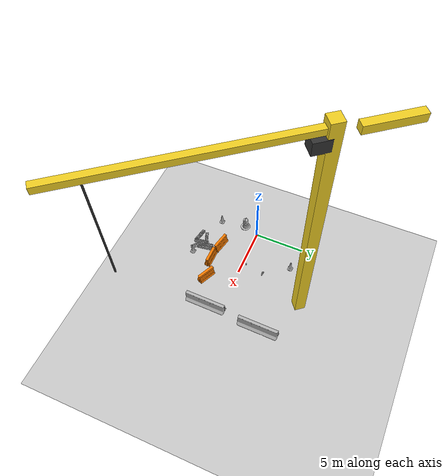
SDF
<sdf version="1.6">
 <world name="default">
  <model name="ground_plane">
   <static>1</static>
   <link name="link">
    <collision name="collision">
     <geometry><plane><normal>0 0 1</normal><size>100 100</size></plane></geometry>
     <surface><friction><ode><mu>100</mu><mu2>50</mu2></ode></friction></surface>
    </collision>
    <visual name="visual">
     <cast_shadows>0</cast_shadows>
     <geometry><plane><normal>0 0 1</normal><size>100 100</size></plane></geometry>
     <material>
      <script><uri>file://media/materials/scripts/gazebo.material</uri><name>Gazebo/Grey</name></script>
     </material>
    </visual>
   </link>
  </model>
  <model name="tower_crane">
   <static>1</static>
   <link name="link">
    <collision name="collision">
     <geometry><mesh><uri>model://tower_crane/meshes/tower_crane.dae</uri></mesh></geometry>
    </collision>
    <visual name="visual">
     <geometry><mesh><uri>model://tower_crane/meshes/tower_crane.dae</uri></mesh></geometry>
    </visual>
   </link>
   <pose>6.03726 6.79238 0 0 0 -0.898155</pose>
  </model>
  <model name="Construction Barrel_0">
   <link name="link">
    <inertial>
     <pose>0 0 0.4 0 -0 0</pose>
     <mass>500</mass>
     <inertia><ixx>51.2096</ixx><iyy>51.2096</iyy><izz>25</izz><ixy>0</ixy><ixz>0</ixz><iyz>0</iyz></inertia>
    </inertial>
    <collision name="collision">
     <geometry><mesh><uri>model://construction_barrel/meshes/construction_barrel.dae</uri></mesh></geometry>
    </collision>
    <visual name="visual">
     <geometry><mesh><uri>model://construction_barrel/meshes/construction_barrel.dae</uri></mesh></geometry>
    </visual>
   </link>
   <pose>-0.544997 -1.5664 -1e-06 3e-06 -2e-06 4.7e-05</pose>
  </model>
  <model name="drc_practice_organge_jersey_barrier_clone_clone_clone_clone">
   <static>1</static>
   <link name="link">
    <visual name="visual">
     <geometry>
      <mesh><uri>model://drc_practice_orange_jersey_barrier/meshes/jersey_barrier.dae</uri></mesh>
     </geometry>
    </visual>
    <collision name="collision">
     <geometry>
      <mesh><uri>model://drc_practice_orange_jersey_barrier/meshes/jersey_barrier.dae</uri></mesh>
     </geometry>
    </collision>
   </link>
   <pose>2.74419 -2.98704 0 0 -0 1.36537</pose>
  </model>
  <model name="drc_practice_organge_jersey_barrier_clone_clone_clone_clone_0">
   <static>1</static>
   <link name="link">
    <visual name="visual">
     <geometry>
      <mesh><uri>model://drc_practice_orange_jersey_barrier/meshes/jersey_barrier.dae</uri></mesh>
     </geometry>
    </visual>
    <collision name="collision">
     <geometry>
      <mesh><uri>model://drc_practice_orange_jersey_barrier/meshes/jersey_barrier.dae</uri></mesh>
     </geometry>
    </collision>
   </link>
   <pose>4.65125 -3.23691 0 0 -0 1.56758</pose>
  </model>
  <model name="drc_practice_organge_jersey_barrier_clone_clone_clone_clone_0_clone">
   <static>1</static>
   <link name="link">
    <visual name="visual">
     <geometry>
      <mesh><uri>model://drc_practice_orange_jersey_barrier/meshes/jersey_barrier.dae</uri></mesh>
     </geometry>
    </visual>
    <collision name="collision">
     <geometry>
      <mesh><uri>model://drc_practice_orange_jersey_barrier/meshes/jersey_barrier.dae</uri></mesh>
     </geometry>
    </collision>
   </link>
   <pose>6.76004 -2.75764 0 0 -0 1.13718</pose>
  </model>
  <model name="jersey_barrier">
   <static>1</static>
   <link name="link">
    <visual name="visual">
     <geometry><mesh><uri>model://jersey_barrier/meshes/jersey_barrier.dae</uri></mesh></geometry>
    </visual>
    <collision name="upright">
     <pose>0 0 0.5715 0 -0 0</pose>
     <geometry><box><size>4.06542 0.3063 1.143</size></box></geometry>
    </collision>
    <collision name="base">
     <pose>0 0 0.032258 0 -0 0</pose>
     <geometry><box><size>4.06542 0.8107 0.064516</size></box></geometry>
    </collision>
    <collision name="base2">
     <pose>0 0 0.1 0 -0 0</pose>
     <geometry><box><size>4.06542 0.65 0.1</size></box></geometry>
    </collision>
    <collision name="base3">
     <pose>0 0 0.2 0 -0 0</pose>
     <geometry><box><size>4.06542 0.5 0.1</size></box></geometry>
    </collision>
    <collision name="left-angle">
     <pose>0 -0.224 0.2401 0.9 -0 0</pose>
     <geometry><box><size>4.06542 0.5 0.064516</size></box></geometry>
    </collision>
    <collision name="right-angle">
     <pose>0 0.224 0.2401 -0.9 0 0</pose>
     <geometry><box><size>4.06542 0.5 0.064516</size></box></geometry>
    </collision>
   </link>
   <pose>9.60721 -1.47907 0 0 -0 1.55298</pose>
  </model>
  <model name="jersey_barrier_clone">
   <static>1</static>
   <link name="link">
    <visual name="visual">
     <geometry><mesh><uri>model://jersey_barrier/meshes/jersey_barrier.dae</uri></mesh></geometry>
    </visual>
    <collision name="upright">
     <pose>0 0 0.5715 0 -0 0</pose>
     <geometry><box><size>4.06542 0.3063 1.143</size></box></geometry>
    </collision>
    <collision name="base">
     <pose>0 0 0.032258 0 -0 0</pose>
     <geometry><box><size>4.06542 0.8107 0.064516</size></box></geometry>
    </collision>
    <collision name="base2">
     <pose>0 0 0.1 0 -0 0</pose>
     <geometry><box><size>4.06542 0.65 0.1</size></box></geometry>
    </collision>
    <collision name="base3">
     <pose>0 0 0.2 0 -0 0</pose>
     <geometry><box><size>4.06542 0.5 0.1</size></box></geometry>
    </collision>
    <collision name="left-angle">
     <pose>0 -0.224 0.2401 0.9 -0 0</pose>
     <geometry><box><size>4.06542 0.5 0.064516</size></box></geometry>
    </collision>
    <collision name="right-angle">
     <pose>0 0.224 0.2401 -0.9 0 0</pose>
     <geometry><box><size>4.06542 0.5 0.064516</size></box></geometry>
    </collision>
   </link>
   <pose>10.0278 4.16885 0 0 -0 1.55298</pose>
  </model>
  <model name="beer">
   <link name="link">
    <pose>0 0 0.115 0 -0 0</pose>
    <inertial>
     <mass>0.39</mass>
     <inertia><ixx>0.00058</ixx><ixy>0</ixy><ixz>0</ixz><iyy>0.00058</iyy><iyz>0</iyz><izz>0.00019</izz></inertia>
    </inertial>
    <collision name="collision">
     <geometry><cylinder><radius>0.055</radius><length>0.23</length></cylinder></geometry>
    </collision>
    <visual name="visual">
     <geometry><cylinder><radius>0.055</radius><length>0.23</length></cylinder></geometry>
     <material>
      <script>
       <uri>model://beer/materials/scripts</uri>
       <uri>model://beer/materials/textures</uri>
       <name>Beer/Diffuse</name>
      </script>
     </material>
    </visual>
   </link>
   <pose>3.85469 0.373429 0 0 -0 0.00029</pose>
  </model>
  <model name="standpipe">
   <static>1</static>
   <link name="standpipe">
    <pose>0 0 0.1 0 1.57078 0</pose>
    <collision name="collision_stopper">
     <pose>0 0 0.22 0 -0 0</pose>
     <geometry><cylinder><radius>0.069</radius><length>0.1</length></cylinder></geometry>
     <surface><friction><ode><mu>0.5</mu><mu2>0.5</mu2></ode></friction></surface>
    </collision>
    <collision name="collision">
     <pose>0 0 0.15 0 -0 0</pose>
     <geometry><mesh><uri>model://standpipe/meshes/standpipe.dae</uri></mesh></geometry>
     <surface><friction><ode><mu>0.5</mu><mu2>0.5</mu2></ode></friction></surface>
    </collision>
    <visual name="visual">
     <pose>0 0 0.15 0 -0 0</pose>
     <geometry><mesh><uri>model://standpipe/meshes/standpipe.dae</uri></mesh></geometry>
    </visual>
   </link>
   <pose>3.91415 2.30422 0 0 -0 0</pose>
  </model>
  <model name="standpipe_clone">
   <static>1</static>
   <link name="standpipe">
    <pose>0 0 0.1 0 1.57078 0</pose>
    <collision name="collision_stopper">
     <pose>0 0 0.22 0 -0 0</pose>
     <geometry><cylinder><radius>0.069</radius><length>0.1</length></cylinder></geometry>
     <surface><friction><ode><mu>0.5</mu><mu2>0.5</mu2></ode></friction></surface>
    </collision>
    <collision name="collision">
     <pose>0 0 0.15 0 -0 0</pose>
     <geometry><mesh><uri>model://standpipe/meshes/standpipe.dae</uri></mesh></geometry>
     <surface><friction><ode><mu>0.5</mu><mu2>0.5</mu2></ode></friction></surface>
    </collision>
    <visual name="visual">
     <pose>0 0 0.15 0 -0 0</pose>
     <geometry><mesh><uri>model://standpipe/meshes/standpipe.dae</uri></mesh></geometry>
    </visual>
   </link>
   <pose>2.44659 5.74462 0 0 -0 0</pose>
  </model>
  <model name="truss">
   <link name="link">
    <inertial>
     <mass>20.7307</mass>
     <inertia>
      <ixx>4.7978</ixx>
      <ixy>0</ixy>
      <ixz>0</ixz>
      <iyy>0.4699</iyy>
      <iyz>-0.002</iyz>
      <izz>4.7978</izz>
     </inertia>
    </inertial>
    <collision name="collision">
     <geometry><mesh><uri>model://drc_practice_truss/meshes/truss.dae</uri></mesh></geometry>
     <surface>
      <bounce><restitution_coefficient>0</restitution_coefficient><threshold>100000</threshold></bounce>
      <friction><ode><mu>10</mu><mu2>10</mu2></ode></friction>
     </surface>
    </collision>
    <visual name="visual">
     <geometry><mesh><uri>model://drc_practice_truss/meshes/truss.dae</uri></mesh></geometry>
    </visual>
   </link>
   <pose>3.65649 -4.39701 0.143337 -1.5e-05 0.0002 0.155418</pose>
  </model>
  <model name="truss_clone">
   <link name="link">
    <inertial>
     <mass>20.7307</mass>
     <inertia>
      <ixx>4.7978</ixx>
      <ixy>0</ixy>
      <ixz>0</ixz>
      <iyy>0.4699</iyy>
      <iyz>-0.002</iyz>
      <izz>4.7978</izz>
     </inertia>
    </inertial>
    <collision name="collision">
     <geometry><mesh><uri>model://drc_practice_truss/meshes/truss.dae</uri></mesh></geometry>
     <surface>
      <bounce><restitution_coefficient>0</restitution_coefficient><threshold>100000</threshold></bounce>
      <friction><ode><mu>10</mu><mu2>10</mu2></ode></friction>
     </surface>
    </collision>
    <visual name="visual">
     <geometry><mesh><uri>model://drc_practice_truss/meshes/truss.dae</uri></mesh></geometry>
    </visual>
   </link>
   <pose>3.33696 -4.42233 0.148786 3.14031 -0.004703 -2.96632</pose>
  </model>
  <model name="truss_clone_0">
   <link name="link">
    <inertial>
     <mass>20.7307</mass>
     <inertia>
      <ixx>4.7978</ixx>
      <ixy>0</ixy>
      <ixz>0</ixz>
      <iyy>0.4699</iyy>
      <iyz>-0.002</iyz>
      <izz>4.7978</izz>
     </inertia>
    </inertial>
    <collision name="collision">
     <geometry><mesh><uri>model://drc_practice_truss/meshes/truss.dae</uri></mesh></geometry>
     <surface>
      <bounce><restitution_coefficient>0</restitution_coefficient><threshold>100000</threshold></bounce>
      <friction><ode><mu>10</mu><mu2>10</mu2></ode></friction>
     </surface>
    </collision>
    <visual name="visual">
     <geometry><mesh><uri>model://drc_practice_truss/meshes/truss.dae</uri></mesh></geometry>
    </visual>
   </link>
   <pose>3.80061 -5.10257 0.428828 -1.77075 1.18807 1.92664</pose>
  </model>
  <model name="truss_clone_1">
   <link name="link">
    <inertial>
     <mass>20.7307</mass>
     <inertia>
      <ixx>4.7978</ixx>
      <ixy>0</ixy>
      <ixz>0</ixz>
      <iyy>0.4699</iyy>
      <iyz>-0.002</iyz>
      <izz>4.7978</izz>
     </inertia>
    </inertial>
    <collision name="collision">
     <geometry><mesh><uri>model://drc_practice_truss/meshes/truss.dae</uri></mesh></geometry>
     <surface>
      <bounce><restitution_coefficient>0</restitution_coefficient><threshold>100000</threshold></bounce>
      <friction><ode><mu>10</mu><mu2>10</mu2></ode></friction>
     </surface>
    </collision>
    <visual name="visual">
     <geometry><mesh><uri>model://drc_practice_truss/meshes/truss.dae</uri></mesh></geometry>
    </visual>
   </link>
   <pose>3.14266 -5.01943 0.147997 -0.012116 1.57077 0.162823</pose>
  </model>
  <model name="truss_clone_2">
   <link name="link">
    <inertial>
     <mass>20.7307</mass>
     <inertia>
      <ixx>4.7978</ixx>
      <ixy>0</ixy>
      <ixz>0</ixz>
      <iyy>0.4699</iyy>
      <iyz>-0.002</iyz>
      <izz>4.7978</izz>
     </inertia>
    </inertial>
    <collision name="collision">
     <geometry><mesh><uri>model://drc_practice_truss/meshes/truss.dae</uri></mesh></geometry>
     <surface>
      <bounce><restitution_coefficient>0</restitution_coefficient><threshold>100000</threshold></bounce>
      <friction><ode><mu>10</mu><mu2>10</mu2></ode></friction>
     </surface>
    </collision>
    <visual name="visual">
     <geometry><mesh><uri>model://drc_practice_truss/meshes/truss.dae</uri></mesh></geometry>
    </visual>
   </link>
   <pose>2.68756 -4.64102 0.365801 -1.7714 1.27766 0.17483</pose>
  </model>
  <model name="truss_clone_2_clone">
   <link name="link">
    <inertial>
     <mass>20.7307</mass>
     <inertia>
      <ixx>4.7978</ixx>
      <ixy>0</ixy>
      <ixz>0</ixz>
      <iyy>0.4699</iyy>
      <iyz>-0.002</iyz>
      <izz>4.7978</izz>
     </inertia>
    </inertial>
    <collision name="collision">
     <geometry><mesh><uri>model://drc_practice_truss/meshes/truss.dae</uri></mesh></geometry>
     <surface>
      <bounce><restitution_coefficient>0</restitution_coefficient><threshold>100000</threshold></bounce>
      <friction><ode><mu>10</mu><mu2>10</mu2></ode></friction>
     </surface>
    </collision>
    <visual name="visual">
     <geometry><mesh><uri>model://drc_practice_truss/meshes/truss.dae</uri></mesh></geometry>
    </visual>
   </link>
   <pose>2.55056 -5.42873 0.313516 -0.220005 -0.058963 1.48869</pose>
  </model>
  <model name="Construction Cone_clone_clone_clone">
   <link name="link">
    <collision name="collision">
     <geometry>
      <mesh><scale>10 10 10</scale><uri>model://construction_cone/meshes/construction_cone.dae</uri></mesh>
     </geometry>
    </collision>
    <visual name="visual">
     <geometry>
      <mesh><scale>10 10 10</scale><uri>model://construction_cone/meshes/construction_cone.dae</uri></mesh>
     </geometry>
    </visual>
    <inertial>
     <inertia><ixx>1</ixx><ixy>0</ixy><ixz>0</ixz><iyy>1</iyy><iyz>0</iyz><izz>1</izz></inertia>
     <mass>1</mass>
    </inertial>
   </link>
   <pose>-0.135956 -4.11164 -0 0 -0 0</pose>
  </model>
  <model name="standpipe_clone_0">
   <static>1</static>
   <link name="standpipe">
    <pose>0 0 0.1 0 1.57078 0</pose>
    <collision name="collision_stopper">
     <pose>0 0 0.22 0 -0 0</pose>
     <geometry><cylinder><radius>0.069</radius><length>0.1</length></cylinder></geometry>
     <surface><friction><ode><mu>0.5</mu><mu2>0.5</mu2></ode></friction></surface>
    </collision>
    <collision name="collision">
     <pose>0 0 0.15 0 -0 0</pose>
     <geometry><mesh><uri>model://standpipe/meshes/standpipe.dae</uri></mesh></geometry>
     <surface><friction><ode><mu>0.5</mu><mu2>0.5</mu2></ode></friction></surface>
    </collision>
    <visual name="visual">
     <pose>0 0 0.15 0 -0 0</pose>
     <geometry><mesh><uri>model://standpipe/meshes/standpipe.dae</uri></mesh></geometry>
    </visual>
   </link>
   <pose>3.87778 2.30096 0 0 -0 0</pose>
  </model>
  <model name="Construction Cone_clone_clone_clone_clone">
   <link name="link">
    <collision name="collision">
     <geometry>
      <mesh><scale>10 10 10</scale><uri>model://construction_cone/meshes/construction_cone.dae</uri></mesh>
     </geometry>
    </collision>
    <visual name="visual">
     <geometry>
      <mesh><scale>10 10 10</scale><uri>model://construction_cone/meshes/construction_cone.dae</uri></mesh>
     </geometry>
    </visual>
    <inertial>
     <inertia><ixx>1</ixx><ixy>0</ixy><ixz>0</ixz><iyy>1</iyy><iyz>0</iyz><izz>1</izz></inertia>
     <mass>1</mass>
    </inertial>
   </link>
   <pose>4.49243 -5.3408 0 0 -0 0.000313</pose>
  </model>
  <model name="Construction Cone">
   <link name="link">
    <collision name="collision">
     <geometry>
      <mesh><scale>10 10 10</scale><uri>model://construction_cone/meshes/construction_cone.dae</uri></mesh>
     </geometry>
    </collision>
    <visual name="visual">
     <geometry>
      <mesh><scale>10 10 10</scale><uri>model://construction_cone/meshes/construction_cone.dae</uri></mesh>
     </geometry>
    </visual>
    <inertial>
     <inertia><ixx>1</ixx><ixy>0</ixy><ixz>0</ixz><iyy>1</iyy><iyz>0</iyz><izz>1</izz></inertia>
     <mass>1</mass>
    </inertial>
   </link>
   <pose>2.54262 4.66686 -0 0 -0 0</pose>
  </model>
 </world>
</sdf>
